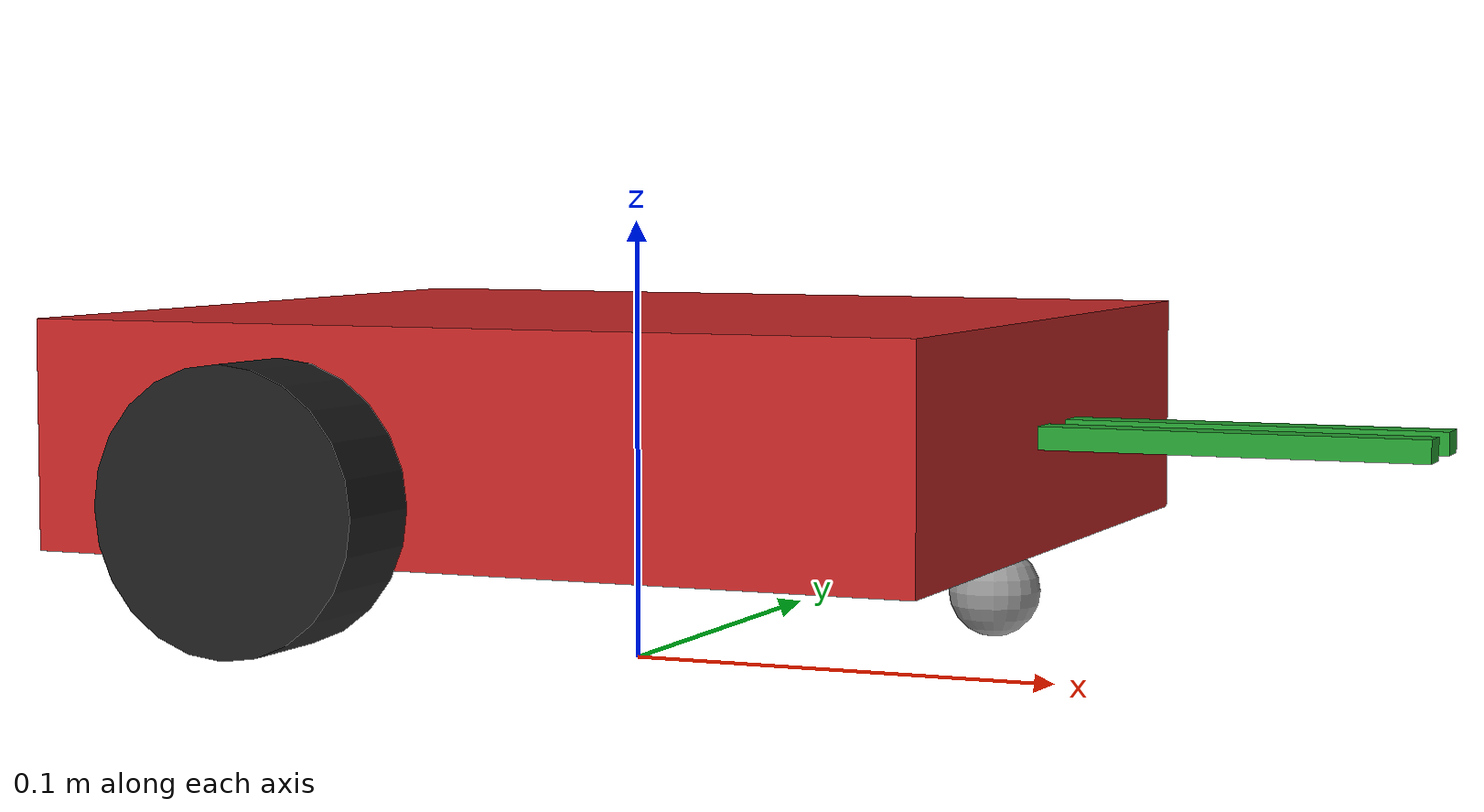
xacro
<?xml version="1.0"?>
<robot xmlns:xacro="http://www.ros.org/wiki/xacro">
    <xacro:property name="base_lx" value="0.20" />
    <xacro:property name="base_ly" value="0.18" />
    <xacro:property name="base_lz" value="0.05" />
    <xacro:property name="base_mass" value="0.2" />

    <xacro:property name="wheel_radius" value="0.03" />
    <xacro:property name="wheel_length" value="0.023" />
    <xacro:property name="wheel_offset_x" value="${-base_lx / 2 + 0.06}" />
    <xacro:property name="wheel_offset_z" value="${-base_lz / 2 + 0.013}" />
    <xacro:property name="wheel_mass" value="0.05" />

    <xacro:property name="caster_radius" value="0.01" />
    <xacro:property name="caster_offset_x" value="${base_lx / 2 - 0.014}" />
    <xacro:property name="caster_mass" value="0.09" />

    <xacro:property name="camera_mass" value="0.05" />
    <xacro:property name="camera_lx" value="0.00112" />
    <xacro:property name="camera_ly" value="0.025" />
    <xacro:property name="camera_lz" value="0.023" />
    <xacro:property name="camera_offset_z" value="${-base_lz / 2 + 0.09}" />

    <xacro:property name="gripper_base_lx" value="0.048" />
    <xacro:property name="gripper_base_ly" value="0.062" />
    <xacro:property name="gripper_base_mass" value="0.03" />

    <xacro:property name="gripper_ef_lx" value="0.083" />
    <xacro:property name="gripper_ef_ly" value="0.008" />
    <xacro:property name="gripper_ef_lz" value="0.005" />
    <xacro:property name="gripper_ef_offset_x" value="${base_lx / 2}" />
    <xacro:property name="gripper_ef_offset_y" value="0.01" />
    <xacro:property name="gripper_ef_offset_z" value="0" />
    <xacro:property name="gripper_ef_mass" value="0.01" />

    <link name="base_footprint"></link>
    <link name="base_link">
        <visual>
            <origin xyz="0 0 0" rpy="0 0 0" />
            <geometry>
                <box size="${base_lx} ${base_ly} ${base_lz}" />
            </geometry>
            <material name="red" />
        </visual>

        <collision>
            <origin xyz="0 0 0" rpy="0 0 0" />
            <geometry>
                <box size="${base_lx} ${base_ly} ${base_lz}" />
            </geometry>
        </collision>

        <xacro:box_inertial m="${base_mass}" lx="${base_lx}" ly="${base_ly}" lz="${base_lz}"
            o_xyz="0 0 0" o_rpy="0 0 0" />
    </link>

    <joint name="base_footprint_joint" type="fixed">
        <origin xyz="0 0 ${base_lz / 2 + wheel_radius}" rpy="0 0 0" />
        <parent link="base_footprint" />
        <child link="base_link" />
    </joint>

    <link name="left_wheel_link">
        <visual>
            <origin xyz="0 0 0" rpy="0 0 0" />
            <geometry>
                <cylinder radius="${wheel_radius}" length="${wheel_length}" />
            </geometry>
            <material name="black" />
        </visual>

        <collision>
            <origin xyz="0 0 0" rpy="0 0 0" />
            <geometry>
                <cylinder radius="${wheel_radius}" length="${wheel_length}" />
            </geometry>
        </collision>

        <xacro:cylinder_inertial m="${wheel_mass}" r="${wheel_radius}" h="${wheel_length}"
            o_xyz="0 0 0" o_rpy="0 0 0" />
    </link>

    <joint name="left_wheel_base_joint" type="continuous">
        <origin xyz="${wheel_offset_x} ${base_ly / 2 + wheel_length / 2} ${wheel_offset_z}"
            rpy="${-pi/2} 0 0" />
        <parent link="base_link" />
        <child link="left_wheel_link" />
        <axis xyz="0 0 1" />
    </joint>

    <link name="right_wheel_link">
        <visual>
            <origin xyz="0 0 0" rpy="0 0 0" />
            <geometry>
                <cylinder radius="${wheel_radius}" length="${wheel_length}" />
            </geometry>
            <material name="black" />
        </visual>

        <collision>
            <origin xyz="0 0 0" rpy="0 0 0" />
            <geometry>
                <cylinder radius="${wheel_radius}" length="${wheel_length}" />
            </geometry>
        </collision>

        <xacro:cylinder_inertial m="${wheel_mass}" r="${wheel_radius}" h="${wheel_length}"
            o_xyz="0 0 0" o_rpy="0 0 0" />
    </link>

    <joint name="right_wheel_base_joint" type="continuous">
        <origin xyz="${wheel_offset_x} -${base_ly / 2 + wheel_length / 2} ${wheel_offset_z}"
            rpy="${-pi/2} 0 0" />
        <parent link="base_link" />
        <child link="right_wheel_link" />
        <axis xyz="0 0 1" />
    </joint>

    <link name="caster_link">

        <visual>
            <origin xyz="0 0 ${-caster_radius}" rpy="0 0 0" />
            <geometry>
                <sphere radius="${caster_radius}" />
            </geometry>
            <material name="gray" />
        </visual>

        <collision>
            <origin xyz="0 0 ${-caster_radius}" rpy="0 0 0" />
            <geometry>
                <sphere radius="${caster_radius}" />
            </geometry>
        </collision>

        <xacro:sphere_inertial m="${caster_mass}" r="${caster_radius}" o_xyz="0 0 0" o_rpy="0 0 0" />
    </link>

    <joint name="caster_base_joint" type="fixed">
        <origin xyz="${caster_offset_x} 0 ${-base_lz / 2}" rpy="0 0 0" />
        <parent link="base_link" />
        <child link="caster_link" />
    </joint>

    <link name="gripper_ef1_link">

        <visual>
            <origin xyz="${gripper_ef_lx / 2} 0 0" rpy="0 0 0" />
            <geometry>
                <box size="${gripper_ef_lx} ${gripper_ef_ly} ${gripper_ef_lz}" />
            </geometry>
            <material name="green" />
        </visual>

        <collision>
            <origin xyz="${gripper_ef_lx / 2} 0 0" rpy="0 0 0" />
            <geometry>
                <box size="${gripper_ef_lx} ${gripper_ef_ly} ${gripper_ef_lz}" />
            </geometry>
            <material name="green" />
        </collision>

        <xacro:box_inertial m="${gripper_ef_mass}" lx="${gripper_ef_lx}" ly="${gripper_ef_ly}"
            lz="${gripper_ef_lz}" o_xyz="${gripper_ef_lx / 2} 0 0" o_rpy="0 0 0" />

    </link>

    <joint name="gripper_ef1_base_joint" type="revolute">
        <origin xyz="${gripper_ef_offset_x} ${gripper_ef_offset_y} ${gripper_ef_offset_z}" rpy="0 0 0" />
        <parent link="base_link" />
        <child link="gripper_ef1_link" />
        <axis xyz="0 0 1" />
        <limit lower="0" upper="0.7" effort="1000" velocity="1" />
    </joint>

    <link name="gripper_ef2_link">

        <visual>
            <origin xyz="${gripper_ef_lx / 2} 0 0" rpy="0 0 0" />
            <geometry>
                <box size="${gripper_ef_lx} ${gripper_ef_ly} ${gripper_ef_lz}" />
            </geometry>
            <material name="green" />
        </visual>

        <collision>
            <origin xyz="${gripper_ef_lx / 2} 0 0" rpy="0 0 0" />
            <geometry>
                <box size="${gripper_ef_lx} ${gripper_ef_ly} ${gripper_ef_lz}" />
            </geometry>
            <material name="green" />
        </collision>

        <xacro:box_inertial m="${gripper_ef_mass}" lx="${gripper_ef_lx}" ly="${gripper_ef_ly}"
            lz="${gripper_ef_lz}" o_xyz="${gripper_ef_lx / 2} 0 0" o_rpy="0 0 0" />

    </link>

    <joint name="gripper_ef2_base_joint" type="revolute">
        <origin xyz="${gripper_ef_offset_x} ${-gripper_ef_offset_y} ${gripper_ef_offset_z}" rpy="0 0 0" />
        <mimic joint="gripper_ef1_base_joint" multiplier="-1.0" offset="0.0"/>

        <parent link="base_link" />
        <child link="gripper_ef2_link" />
        <axis xyz="0 0 1" />
        <limit lower="-0.7" upper="0" effort="1000" velocity="1" />
    </joint>

</robot>
